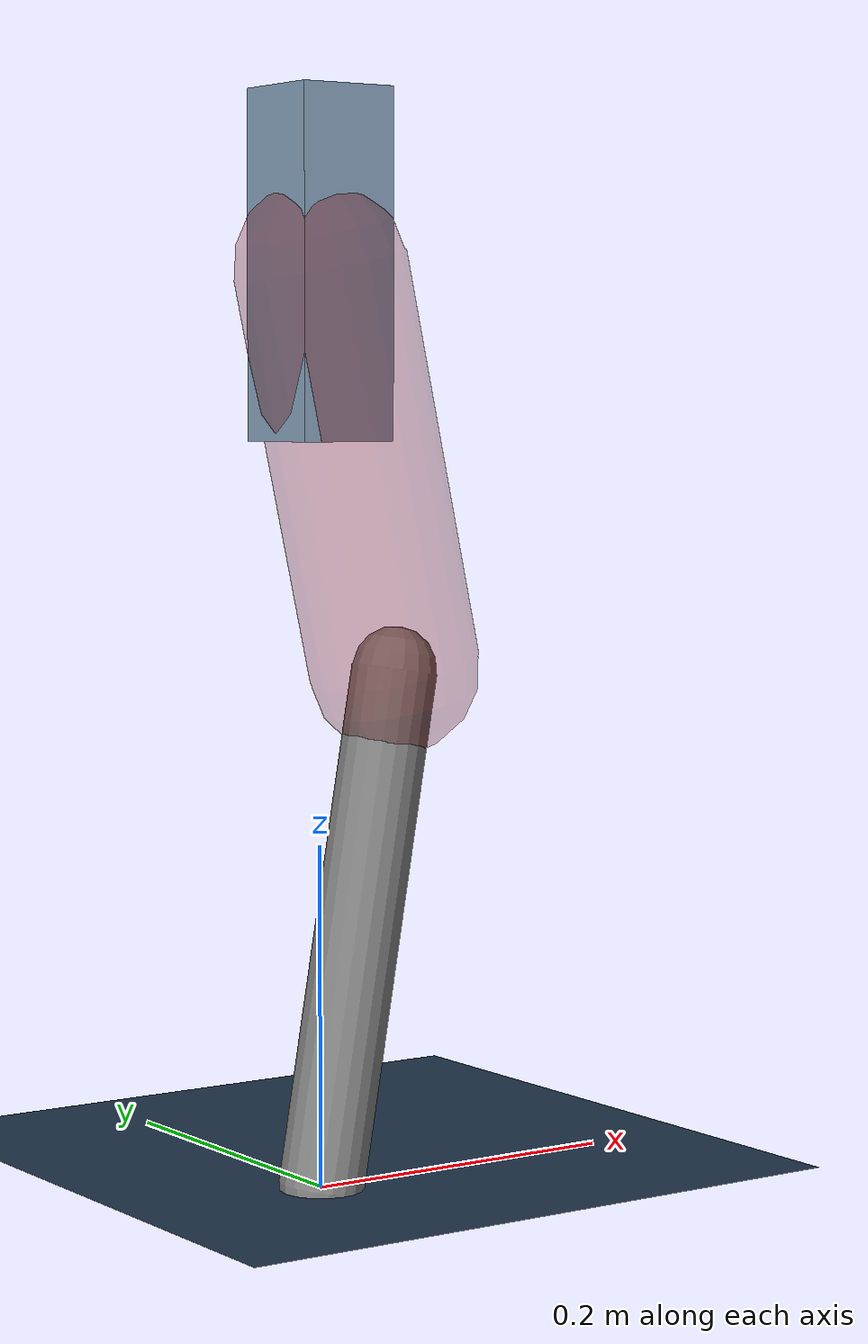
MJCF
<mujoco model="Hopper2D">
	<compiler inertiafromgeom="true" angle="radian" />
	<option timestep="0.001" integrator="implicit" cone="elliptic" solver="Newton" tolerance="1e-10" />

	<default>
		<geom contype="1" conaffinity="1" condim="3" friction="2 0.005 0.0001" solref="0.005 1" />
		<joint limited="true" damping="0.1" />
	</default>

	<asset>
		<texture name="skybox" type="skybox" builtin="gradient" rgb1=".4 .6 .8" rgb2="0 0 0" width="800" height="800" />
		<texture name="grid" type="2d" builtin="checker" rgb1=".1 .2 .3" rgb2=".2 .3 .4" width="300" height="300" mark="edge" markrgb=".2 .3 .4" />
		<material name="ground" texture="grid" texrepeat="1 1" texuniform="true" reflectance="0.1" />
		<material name="leg" rgba="0.5 0.6 0.7 1" />
	</asset>

	<worldbody>

		<geom name="floor" type="plane" size="5 5 0.25" material="ground" />

		<light directional="false" diffuse="0.8 0.8 0.8" specular="0.3 0.3 0.3" pos="0 0 2" dir="0 0 -1" />
		<light mode="targetbodycom" target="base" directional="false" diffuse="0.8 0.8 0.8" specular="0.3 0.3 0.3" pos="0 0 2" dir="0 0 -1" />

		<camera name="fixed" pos="0 -2 1" xyaxes="1 0 0 0 0 1" />
		<camera name="tracking" mode="trackcom" pos="0 -3 1" />

		<body name="root" pos="0 0 0.5332271428769961">
			<joint name="slide_x" type="slide" axis="1 0 0" range="-100 100" />
			<joint name="slide_z" type="slide" axis="0 0 1" range="0 10" />

			<body name="base" pos="0 0 0">
				<geom name="torso" type="box" size="0.03 0.03 0.1" mass="4.984" material="leg" />

				<body name="link1" pos="0 0 0" euler="0 1.3532385470740091 0">
					<joint type="hinge" axis="0 -1 0" pos="0 0 0" name="hinge1" limited="true" range="-3.14 3.14" stiffness="0" damping="0.1" />
					<geom name="thigh" type="capsule" fromto="0 0 0 0.23847549134635337 0 0" size="0.05" rgba="0.5 0 0 0.3" mass="0.8266887283658835" />

					<body name="link2" pos="0.23847549134635337 0 0" euler="0 0.3872757554628615 0">
						<joint type="hinge" axis="0 -1 0" pos="0 0 0" name="hinge2" limited="true" range="-3.14 3.14" stiffness="0" damping="0.1" />
						<geom name="shank" type="capsule" fromto="0 0 0 0.30475165153064276 0 0" size="0.025" mass="0.4873013212245142" />

					</body>
				</body>
			</body>
		</body>
	</worldbody>

	<actuator>
		<motor name="torque1" joint="hinge1" ctrlrange="-169.32900958987415 169.32900958987415" ctrllimited="true" gear="1" />
		<motor name="torque2" joint="hinge2" ctrlrange="-274.7854009345687 274.7854009345687" ctrllimited="true" gear="1" />
	</actuator>
</mujoco>
